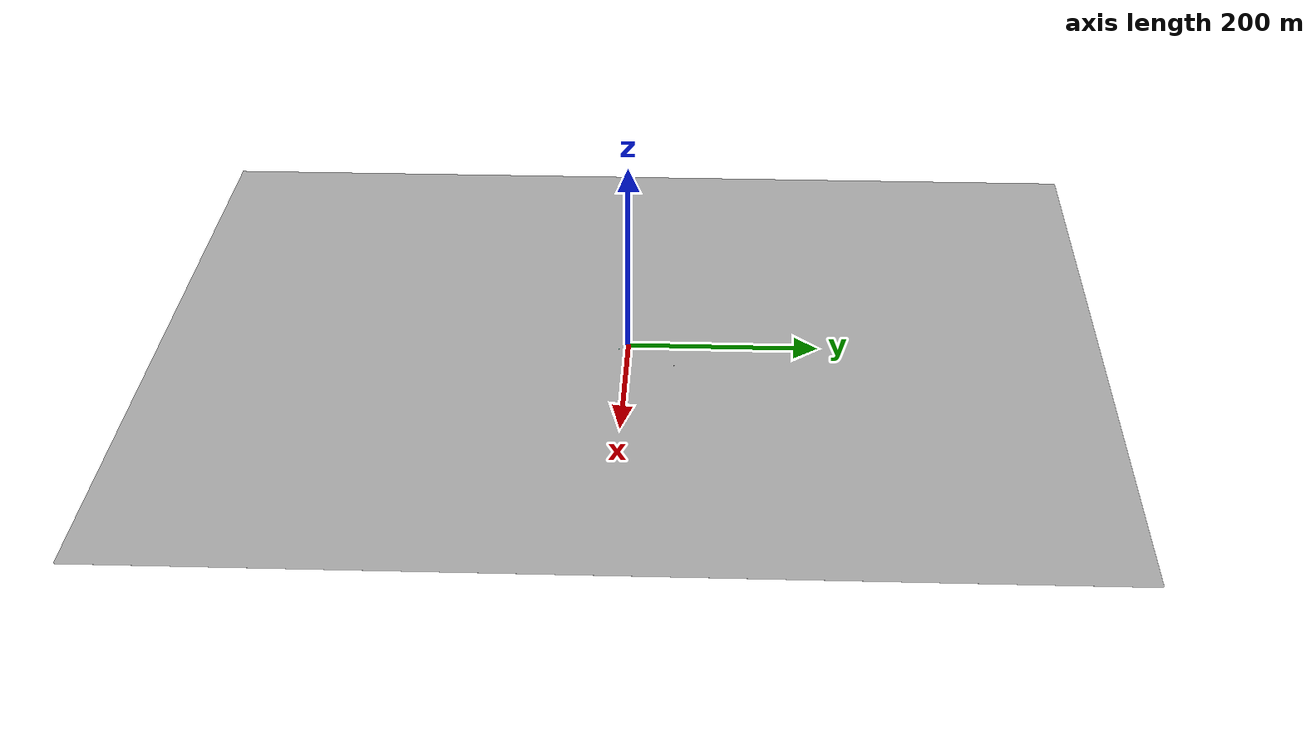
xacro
<?xml version="1.0"?>
<robot name="empty_world" xmlns:xacro="http://www.ros.org/wiki/xacro">
  <link name="empty_world_link">
    <inertial>
      <origin xyz="0 0 0" rpy="0 0 0"/>
      <mass value="1"/>
      <inertia ixx="1" ixy="0" ixz="0" iyy="1" iyz="0" izz="1"/>
    </inertial>
    <visual>
      <origin xyz="0 0 0" rpy="0 0 0"/>
      <geometry>
        <box size="1000 1000 0.01" />
      </geometry>
      <material name="light_grey">
        <color rgba="0.7 0.7 0.7 1.0" />
      </material>
    </visual>
    <collision>
      <origin xyz="0 0 0" rpy="0 0 0"/>
      <geometry>
        <box size="1000 1000 0.01" />
      </geometry>
      <surface>
        <friction>
          <ode>
            <mu>100</mu>
            <mu2>50</mu2>
          </ode>
        </friction>
      </surface>
    </collision>
  </link>

  <xacro:include filename="$(find cpr_accessories_gazebo)/urdf/base_station.urdf.xacro" />
  <xacro:cpr_base_station name="base_station" parent="empty_world_link">
    <origin xyz="50 50 0" />
  </xacro:cpr_base_station>

  <xacro:arg name="dock_x"   default="$(optenv CPR_SIMULATION_DOCK_X 10.0)"/>
  <xacro:arg name="dock_y"   default="$(optenv CPR_SIMULATION_DOCK_Y -10.0)"/>
  <xacro:arg name="dock_yaw" default="$(optenv CPR_SIMULATION_DOCK_YAW 2.356194490192345)"/>
  <xacro:include  filename="$(find cpr_accessories_gazebo)/urdf/charge_dock.urdf.xacro" />
  <xacro:cpr_charge_dock name="charge_dock" parent="empty_world_link">
    <origin xyz="$(arg dock_x) $(arg dock_y) 0" rpy="0 0 $(arg dock_yaw)"/>
  </xacro:cpr_charge_dock>

  <gazebo> <static>true</static></gazebo>
</robot>

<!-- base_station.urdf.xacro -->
<robot xmlns:xacro="http://wiki.ros.org/xacro" name="clearpath_base_station">
  <xacro:macro name="cpr_base_station" params="name parent *origin">
    <link name="${name}_link">
      <visual>
        <geometry>
          <mesh filename="package://cpr_accessories_gazebo/meshes/BaseStationWithTripod.dae" />
        </geometry>
      </visual>
      <collision>
        <geometry>
          <mesh filename="package://cpr_accessories_gazebo/meshes/BaseStationWithTripod.stl" />
        </geometry>
      </collision>
    </link>
    <joint name="${name}_joint" type="fixed">
      <parent link="${parent}" />
      <child link="${name}_link" />
      <xacro:insert_block name="origin" />
    </joint>
  </xacro:macro>
</robot>

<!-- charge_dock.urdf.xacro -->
<robot xmlns:xacro="http://wiki.ros.org/xacro" name="clearpath_base_station">
  <xacro:macro name="cpr_charge_dock" params="name parent *origin">
    <link name="${name}_link">
      <visual>
        <geometry>
          <mesh filename="package://cpr_accessories_gazebo/meshes/WiboticTR301.dae" />
        </geometry>
        <origin xyz="-0.35 0 0" rpy="0 0 1.5707963267948966" />
      </visual>
      <collision>
        <geometry>
          <mesh filename="package://cpr_accessories_gazebo/meshes/WiboticTR301.stl" />
        </geometry>
        <origin xyz="-0.35 0 0" rpy="0 0 1.5707963267948966" />
      </collision>
    </link>
    <joint name="${name}_joint" type="fixed">
      <parent link="${parent}" />
      <child link="${name}_link" />
      <xacro:insert_block name="origin" />
    </joint>
  </xacro:macro>
</robot>
